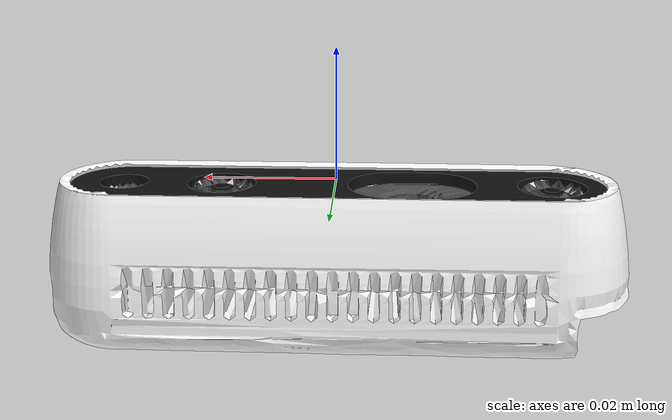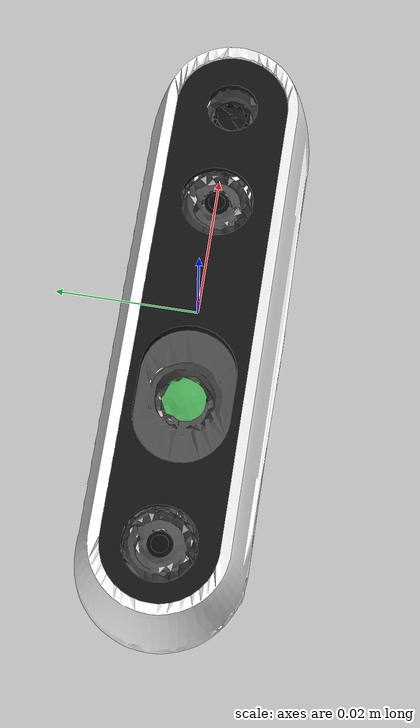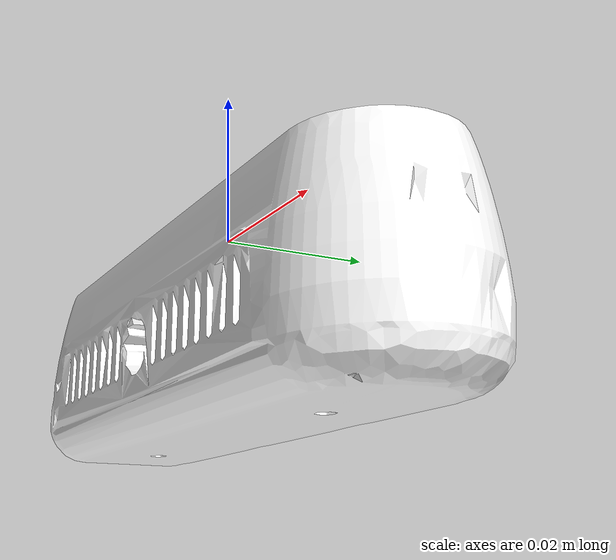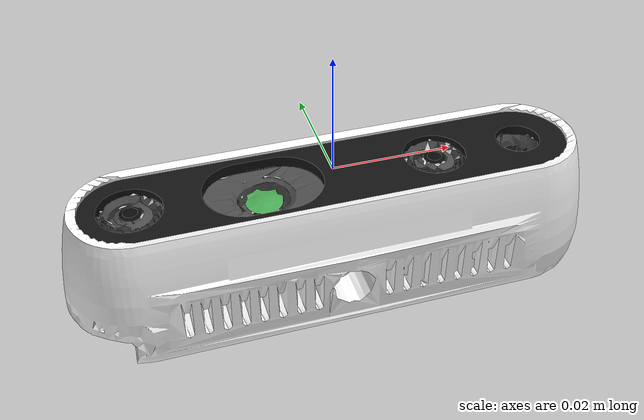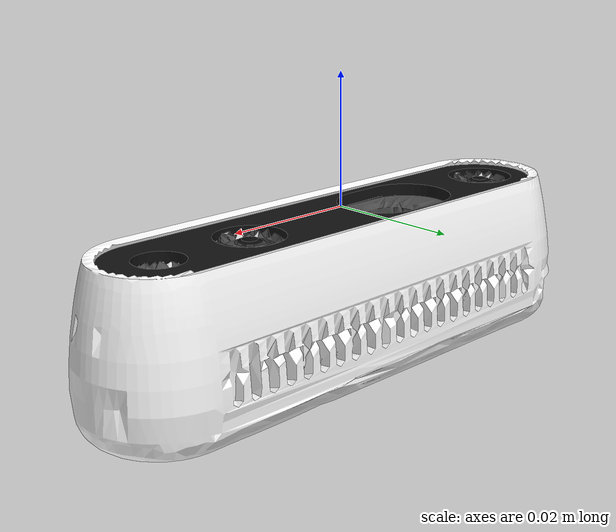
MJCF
<?xml version="1.0" ?>
<mujoco model="d435i">
	<compiler meshdir="d435i/meshes" texturedir="d435i/textures" angle="radian" autolimits="true" balanceinertia="true" boundmass="0.000001" boundinertia="0.000001"/>
	<default>
		<default class="visual">
			<geom contype="0" conaffinity="0"/>
		</default>
		<default class="collision">
			<geom rgba="1.0 0.0 0.0 0.0"/>
		</default>
	</default>
	<asset>
		<mesh name="d435i_0" file="stl/d435i_0.stl" scale="1.0 1.0 1.0"/>
		<mesh name="d435i_1" file="stl/d435i_1.stl" scale="1.0 1.0 1.0"/>
		<mesh name="d435i_2" file="stl/d435i_2.stl" scale="1.0 1.0 1.0"/>
		<mesh name="d435i_3" file="stl/d435i_3.stl" scale="1.0 1.0 1.0"/>
		<mesh name="d435i_4" file="stl/d435i_4.stl" scale="1.0 1.0 1.0"/>
		<mesh name="d435i_5" file="stl/d435i_5.stl" scale="1.0 1.0 1.0"/>
		<mesh name="d435i_6" file="stl/d435i_6.stl" scale="1.0 1.0 1.0"/>
		<mesh name="d435i_7" file="stl/d435i_7.stl" scale="1.0 1.0 1.0"/>
		<mesh name="d435i_8" file="stl/d435i_8.stl" scale="1.0 1.0 1.0"/>
		<material name="IR_Lens" rgba="0.03560100123286247 0.03560100123286247 0.03560100123286247 1.0" emission="0.0" specular="0.0"/>
		<material name="IR_Emitter_Lens" rgba="0.2874400019645691 0.665386974811554 0.32777801156044006 1.0" emission="0.0" specular="0.0"/>
		<material name="IR_Rim" rgba="0.7991020083427429 0.8069519996643066 0.7991030216217041 1.0" emission="0.0" specular="0.0"/>
		<material name="Cameras_Gray" rgba="0.2961379885673523 0.2961379885673523 0.2961379885673523 1.0" emission="0.0" specular="0.0"/>
		<material name="Black_Acrylic" rgba="0.07035999745130539 0.07035999745130539 0.07035999745130539 1.0" emission="0.0" specular="0.0"/>
		<material name="RGB_Pupil" rgba="0.08714000135660172 0.002865999937057495 0.009345999918878078 1.0" emission="0.0" specular="0.0"/>
		<material name="Metal_Casing" rgba="1.0 1.0 1.0 1.0" emission="0.0" specular="0.0"/>
	</asset>
	<worldbody>
		<body name="d435i" pos="0.0 0.0 0.0" quat="1.0 0.0 0.0 0.0">
			<geom name="Geom_0" type="mesh" pos="-0.007502287160605192 3.000550918841327e-07 -0.0013673949288204312" quat="0.0 0.7071067690849304 0.0 0.7071067690849304" mesh="d435i_0" material="IR_Lens" class="visual"/>
			<geom name="Geom_1" type="mesh" pos="-0.01149996742606163 -2.546632948963179e-08 -0.003978610970079899" quat="0.5 0.5 -0.5 0.5" mesh="d435i_1" material="IR_Emitter_Lens" class="visual"/>
			<geom name="Geom_2" type="mesh" pos="-0.006740902084857225 9.621788194635883e-05 -0.0028698823880404234" quat="0.07339746505022049 0.7039982080459595 0.08108197897672653 0.7017300128936768" mesh="d435i_2" material="IR_Rim" class="visual"/>
			<geom name="Geom_3" type="mesh" pos="-0.007508819457143545 -1.048028025252279e-06 -0.0011700158938765526" quat="0.0 0.7071067690849304 0.0 0.7071067690849304" mesh="d435i_3" material="IR_Lens" class="visual"/>
			<geom name="Geom_4" type="mesh" pos="-0.005241830833256245 0.0002548412885516882 -0.0070938775315880775" quat="-0.0032702740281820297 0.6981528401374817 0.004652755334973335 0.7159261703491211" mesh="d435i_4" material="Cameras_Gray" class="visual"/>
			<geom name="Geom_5" type="mesh" pos="-0.0028610611334443092 -8.2617778389249e-05 -0.0016461957711726427" quat="-0.002661660313606262 0.7065868973731995 -0.0018906767945736647 0.7076187133789062" mesh="d435i_5" material="Black_Acrylic" class="visual"/>
			<geom name="Geom_6" type="mesh" pos="0.03249426558613777 4.749365871248301e-06 -0.0051918174140155315" quat="0.004027467221021652 0.7070953249931335 -0.004027467221021652 0.7070953249931335" mesh="d435i_6" material="Black_Acrylic" class="visual"/>
			<geom name="Geom_7" type="mesh" pos="0.032499928027391434 6.196556796567165e-07 -0.0036345687694847584" quat="1.0 0.0 0.0 0.0" mesh="d435i_7" material="RGB_Pupil" class="visual"/>
			<geom name="Geom_8" type="mesh" pos="0.001451134798116982 -0.0003193267621099949 -0.013541189953684807" quat="0.02902398817241192 0.708311915397644 0.027552668005228043 0.7047642469406128" mesh="d435i_8" material="Metal_Casing" class="visual"/>
			<geom name="Geom_9" type="capsule" pos="0.002560045337304473 -0.0007363183540292084 -0.01492396742105484" quat="0.02902398817241192 0.708311915397644 0.027552668005228043 0.7047642469406128" size="0.01589272730052471 0.032419998198747635 0.0" class="collision"/>
		</body>
	</worldbody>
	<equality/>
</mujoco>
